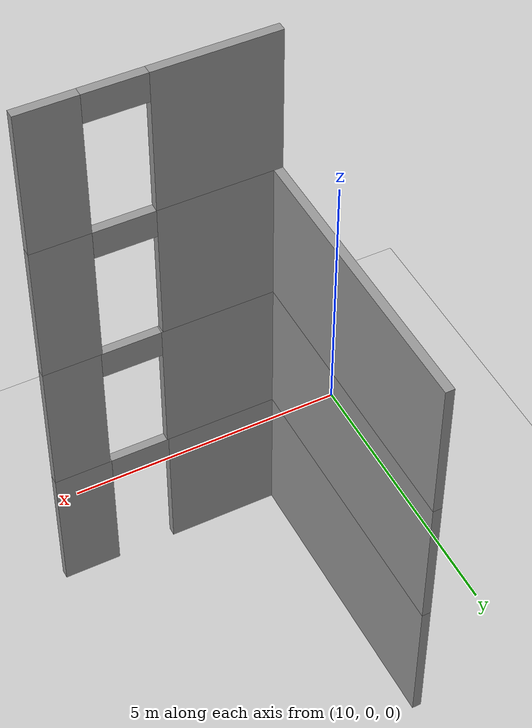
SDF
<sdf version="1.6">
 <world name="default">
  <model name="ground_plane">
   <static>1</static>
   <link name="link">
    <collision name="collision">
     <geometry><plane><normal>0 0 1</normal><size>100 100</size></plane></geometry>
     <surface>
      <contact><collide_bitmask>65535</collide_bitmask></contact>
      <friction><ode><mu>100</mu><mu2>50</mu2></ode></friction>
     </surface>
    </collision>
    <visual name="visual">
     <cast_shadows>0</cast_shadows>
     <geometry><plane><normal>0 0 1</normal><size>100 100</size></plane></geometry>
     <material>
      <script><uri>file://media/materials/scripts/gazebo.material</uri><name>Gazebo/Grey</name></script>
     </material>
    </visual>
   </link>
  </model>
  <model name="floor2plan_v2">
   <link name="Wall_106">
    <pose>13.9531 1.47672 5 0 -0 0</pose>
    <visual name="Wall_106_Visual_0">
     <pose>-0.9875 0 1.25 0 -0 0</pose>
     <geometry><box><size>2.025 0.15 2.5</size></box></geometry>
     <material>
      <script><uri>file://media/materials/scripts/gazebo.material</uri><name>Gazebo/Grey</name></script>
      <ambient>1 1 1 1</ambient>
      <shader type="pixel"/>
      <diffuse>0.7 0.7 0.7 1</diffuse>
      <specular>0.01 0.01 0.01 1</specular>
      <emissive>0 0 0 1</emissive>
     </material>
     <meta><layer>2</layer></meta>
    </visual>
    <visual name="Wall_106_Visual_1">
     <pose>1.5125 0 1.25 0 -0 0</pose>
     <geometry><box><size>0.974999 0.15 2.5</size></box></geometry>
     <material>
      <script><uri>file://media/materials/scripts/gazebo.material</uri><name>Gazebo/Grey</name></script>
      <ambient>1 1 1 1</ambient>
      <shader type="pixel"/>
      <diffuse>0.7 0.7 0.7 1</diffuse>
      <specular>0.01 0.01 0.01 1</specular>
      <emissive>0 0 0 1</emissive>
     </material>
     <meta><layer>2</layer></meta>
    </visual>
    <visual name="Wall_106_Visual_2">
     <pose>0.525001 0 2.25 0 -0 0</pose>
     <geometry><box><size>1 0.15 0.5</size></box></geometry>
     <material>
      <script><uri>file://media/materials/scripts/gazebo.material</uri><name>Gazebo/Grey</name></script>
      <ambient>1 1 1 1</ambient>
      <shader type="pixel"/>
      <diffuse>0.7 0.7 0.7 1</diffuse>
      <specular>0.01 0.01 0.01 1</specular>
      <emissive>0 0 0 1</emissive>
     </material>
     <meta><layer>2</layer></meta>
    </visual>
    <collision name="Wall_106_Collision_0">
     <pose>-0.9875 0 1.25 0 -0 0</pose>
     <geometry><box><size>2.025 0.15 2.5</size></box></geometry>
     <surface>
      <friction>
       <ode><mu>1</mu><mu2>1</mu2><fdir1>0 0 0</fdir1><slip1>0</slip1><slip2>0</slip2></ode>
       <torsional>
        <coefficient>1</coefficient>
        <patch_radius>0</patch_radius>
        <surface_radius>0</surface_radius>
        <use_patch_radius>1</use_patch_radius>
        <ode><slip>0</slip></ode>
       </torsional>
      </friction>
      <bounce><restitution_coefficient>0</restitution_coefficient><threshold>1e+06</threshold></bounce>
      <contact>
       <collide_without_contact>0</collide_without_contact>
       <collide_without_contact_bitmask>1</collide_without_contact_bitmask>
       <collide_bitmask>1</collide_bitmask>
       <ode>
        <soft_cfm>0</soft_cfm>
        <soft_erp>0.2</soft_erp>
        <kp>1e+13</kp>
        <kd>1</kd>
        <max_vel>0.01</max_vel>
        <min_depth>0</min_depth>
       </ode>
       <bullet>
        <split_impulse>1</split_impulse>
        <split_impulse_penetration_threshold>-0.01</split_impulse_penetration_threshold>
        <soft_cfm>0</soft_cfm>
        <soft_erp>0.2</soft_erp>
        <kp>1e+13</kp>
        <kd>1</kd>
       </bullet>
      </contact>
     </surface>
    </collision>
    <collision name="Wall_106_Collision_2">
     <pose>0.525001 0 2.25 0 -0 0</pose>
     <geometry><box><size>1 0.15 0.5</size></box></geometry>
     <surface>
      <friction>
       <ode><mu>1</mu><mu2>1</mu2><fdir1>0 0 0</fdir1><slip1>0</slip1><slip2>0</slip2></ode>
       <torsional>
        <coefficient>1</coefficient>
        <patch_radius>0</patch_radius>
        <surface_radius>0</surface_radius>
        <use_patch_radius>1</use_patch_radius>
        <ode><slip>0</slip></ode>
       </torsional>
      </friction>
      <bounce><restitution_coefficient>0</restitution_coefficient><threshold>1e+06</threshold></bounce>
      <contact>
       <collide_without_contact>0</collide_without_contact>
       <collide_without_contact_bitmask>1</collide_without_contact_bitmask>
       <collide_bitmask>1</collide_bitmask>
       <ode>
        <soft_cfm>0</soft_cfm>
        <soft_erp>0.2</soft_erp>
        <kp>1e+13</kp>
        <kd>1</kd>
        <max_vel>0.01</max_vel>
        <min_depth>0</min_depth>
       </ode>
       <bullet>
        <split_impulse>1</split_impulse>
        <split_impulse_penetration_threshold>-0.01</split_impulse_penetration_threshold>
        <soft_cfm>0</soft_cfm>
        <soft_erp>0.2</soft_erp>
        <kp>1e+13</kp>
        <kd>1</kd>
       </bullet>
      </contact>
     </surface>
    </collision>
    <collision name="Wall_106_Collision_1">
     <pose>1.5125 0 1.25 0 -0 0</pose>
     <geometry><box><size>0.974999 0.15 2.5</size></box></geometry>
     <surface>
      <friction>
       <ode><mu>1</mu><mu2>1</mu2><fdir1>0 0 0</fdir1><slip1>0</slip1><slip2>0</slip2></ode>
       <torsional>
        <coefficient>1</coefficient>
        <patch_radius>0</patch_radius>
        <surface_radius>0</surface_radius>
        <use_patch_radius>1</use_patch_radius>
        <ode><slip>0</slip></ode>
       </torsional>
      </friction>
      <bounce><restitution_coefficient>0</restitution_coefficient><threshold>1e+06</threshold></bounce>
      <contact>
       <collide_without_contact>0</collide_without_contact>
       <collide_without_contact_bitmask>1</collide_without_contact_bitmask>
       <collide_bitmask>1</collide_bitmask>
       <ode>
        <soft_cfm>0</soft_cfm>
        <soft_erp>0.2</soft_erp>
        <kp>1e+13</kp>
        <kd>1</kd>
        <max_vel>0.01</max_vel>
        <min_depth>0</min_depth>
       </ode>
       <bullet>
        <split_impulse>1</split_impulse>
        <split_impulse_penetration_threshold>-0.01</split_impulse_penetration_threshold>
        <soft_cfm>0</soft_cfm>
        <soft_erp>0.2</soft_erp>
        <kp>1e+13</kp>
        <kd>1</kd>
       </bullet>
      </contact>
     </surface>
    </collision>
   </link>
   <link name="Wall_111">
    <pose>12.0281 3.90172 5 0 0 -1.5708</pose>
    <visual name="Wall_111_Visual">
     <pose>0 0 1.25 0 -0 0</pose>
     <geometry><box><size>5 0.15 2.5</size></box></geometry>
     <material>
      <script><uri>file://media/materials/scripts/gazebo.material</uri><name>Gazebo/Grey</name></script>
      <ambient>1 1 1 1</ambient>
      <shader type="pixel"/>
      <diffuse>0.7 0.7 0.7 1</diffuse>
      <specular>0.01 0.01 0.01 1</specular>
      <emissive>0 0 0 1</emissive>
     </material>
     <meta><layer>2</layer></meta>
    </visual>
    <collision name="Wall_111_Collision">
     <pose>0 0 1.25 0 -0 0</pose>
     <geometry><box><size>5 0.15 2.5</size></box></geometry>
     <surface>
      <friction>
       <ode><mu>1</mu><mu2>1</mu2><fdir1>0 0 0</fdir1><slip1>0</slip1><slip2>0</slip2></ode>
       <torsional>
        <coefficient>1</coefficient>
        <patch_radius>0</patch_radius>
        <surface_radius>0</surface_radius>
        <use_patch_radius>1</use_patch_radius>
        <ode><slip>0</slip></ode>
       </torsional>
      </friction>
      <bounce><restitution_coefficient>0</restitution_coefficient><threshold>1e+06</threshold></bounce>
      <contact>
       <collide_without_contact>0</collide_without_contact>
       <collide_without_contact_bitmask>1</collide_without_contact_bitmask>
       <collide_bitmask>1</collide_bitmask>
       <ode>
        <soft_cfm>0</soft_cfm>
        <soft_erp>0.2</soft_erp>
        <kp>1e+13</kp>
        <kd>1</kd>
        <max_vel>0.01</max_vel>
        <min_depth>0</min_depth>
       </ode>
       <bullet>
        <split_impulse>1</split_impulse>
        <split_impulse_penetration_threshold>-0.01</split_impulse_penetration_threshold>
        <soft_cfm>0</soft_cfm>
        <soft_erp>0.2</soft_erp>
        <kp>1e+13</kp>
        <kd>1</kd>
       </bullet>
      </contact>
     </surface>
    </collision>
   </link>
   <link name="Wall_132">
    <pose>13.9531 1.47672 7.5 0 -0 0</pose>
    <visual name="Wall_132_Visual_0">
     <pose>-0.9875 0 1.25 0 -0 0</pose>
     <geometry><box><size>2.025 0.15 2.5</size></box></geometry>
     <material>
      <script><uri>file://media/materials/scripts/gazebo.material</uri><name>Gazebo/Grey</name></script>
      <ambient>1 1 1 1</ambient>
      <shader type="pixel"/>
      <diffuse>0.7 0.7 0.7 1</diffuse>
      <specular>0.01 0.01 0.01 1</specular>
      <emissive>0 0 0 1</emissive>
     </material>
     <meta><layer>3</layer></meta>
    </visual>
    <visual name="Wall_132_Visual_1">
     <pose>1.5125 0 1.25 0 -0 0</pose>
     <geometry><box><size>0.974999 0.15 2.5</size></box></geometry>
     <material>
      <script><uri>file://media/materials/scripts/gazebo.material</uri><name>Gazebo/Grey</name></script>
      <ambient>1 1 1 1</ambient>
      <shader type="pixel"/>
      <diffuse>0.7 0.7 0.7 1</diffuse>
      <specular>0.01 0.01 0.01 1</specular>
      <emissive>0 0 0 1</emissive>
     </material>
     <meta><layer>3</layer></meta>
    </visual>
    <visual name="Wall_132_Visual_2">
     <pose>0.525001 0 2.25 0 -0 0</pose>
     <geometry><box><size>1 0.15 0.5</size></box></geometry>
     <material>
      <script><uri>file://media/materials/scripts/gazebo.material</uri><name>Gazebo/Grey</name></script>
      <ambient>1 1 1 1</ambient>
      <shader type="pixel"/>
      <diffuse>0.7 0.7 0.7 1</diffuse>
      <specular>0.01 0.01 0.01 1</specular>
      <emissive>0 0 0 1</emissive>
     </material>
     <meta><layer>3</layer></meta>
    </visual>
    <collision name="Wall_132_Collision_0">
     <pose>-0.9875 0 1.25 0 -0 0</pose>
     <geometry><box><size>2.025 0.15 2.5</size></box></geometry>
     <surface>
      <friction>
       <ode><mu>1</mu><mu2>1</mu2><fdir1>0 0 0</fdir1><slip1>0</slip1><slip2>0</slip2></ode>
       <torsional>
        <coefficient>1</coefficient>
        <patch_radius>0</patch_radius>
        <surface_radius>0</surface_radius>
        <use_patch_radius>1</use_patch_radius>
        <ode><slip>0</slip></ode>
       </torsional>
      </friction>
      <bounce><restitution_coefficient>0</restitution_coefficient><threshold>1e+06</threshold></bounce>
      <contact>
       <collide_without_contact>0</collide_without_contact>
       <collide_without_contact_bitmask>1</collide_without_contact_bitmask>
       <collide_bitmask>1</collide_bitmask>
       <ode>
        <soft_cfm>0</soft_cfm>
        <soft_erp>0.2</soft_erp>
        <kp>1e+13</kp>
        <kd>1</kd>
        <max_vel>0.01</max_vel>
        <min_depth>0</min_depth>
       </ode>
       <bullet>
        <split_impulse>1</split_impulse>
        <split_impulse_penetration_threshold>-0.01</split_impulse_penetration_threshold>
        <soft_cfm>0</soft_cfm>
        <soft_erp>0.2</soft_erp>
        <kp>1e+13</kp>
        <kd>1</kd>
       </bullet>
      </contact>
     </surface>
    </collision>
    <collision name="Wall_132_Collision_1">
     <pose>1.5125 0 1.25 0 -0 0</pose>
     <geometry><box><size>0.974999 0.15 2.5</size></box></geometry>
     <surface>
      <friction>
       <ode><mu>1</mu><mu2>1</mu2><fdir1>0 0 0</fdir1><slip1>0</slip1><slip2>0</slip2></ode>
       <torsional>
        <coefficient>1</coefficient>
        <patch_radius>0</patch_radius>
        <surface_radius>0</surface_radius>
        <use_patch_radius>1</use_patch_radius>
        <ode><slip>0</slip></ode>
       </torsional>
      </friction>
      <bounce><restitution_coefficient>0</restitution_coefficient><threshold>1e+06</threshold></bounce>
      <contact>
       <collide_without_contact>0</collide_without_contact>
       <collide_without_contact_bitmask>1</collide_without_contact_bitmask>
       <collide_bitmask>1</collide_bitmask>
       <ode>
        <soft_cfm>0</soft_cfm>
        <soft_erp>0.2</soft_erp>
        <kp>1e+13</kp>
        <kd>1</kd>
        <max_vel>0.01</max_vel>
        <min_depth>0</min_depth>
       </ode>
       <bullet>
        <split_impulse>1</split_impulse>
        <split_impulse_penetration_threshold>-0.01</split_impulse_penetration_threshold>
        <soft_cfm>0</soft_cfm>
        <soft_erp>0.2</soft_erp>
        <kp>1e+13</kp>
        <kd>1</kd>
       </bullet>
      </contact>
     </surface>
    </collision>
    <collision name="Wall_132_Collision_2">
     <pose>0.525001 0 2.25 0 -0 0</pose>
     <geometry><box><size>1 0.15 0.5</size></box></geometry>
     <surface>
      <friction>
       <ode><mu>1</mu><mu2>1</mu2><fdir1>0 0 0</fdir1><slip1>0</slip1><slip2>0</slip2></ode>
       <torsional>
        <coefficient>1</coefficient>
        <patch_radius>0</patch_radius>
        <surface_radius>0</surface_radius>
        <use_patch_radius>1</use_patch_radius>
        <ode><slip>0</slip></ode>
       </torsional>
      </friction>
      <bounce><restitution_coefficient>0</restitution_coefficient><threshold>1e+06</threshold></bounce>
      <contact>
       <collide_without_contact>0</collide_without_contact>
       <collide_without_contact_bitmask>1</collide_without_contact_bitmask>
       <collide_bitmask>1</collide_bitmask>
       <ode>
        <soft_cfm>0</soft_cfm>
        <soft_erp>0.2</soft_erp>
        <kp>1e+13</kp>
        <kd>1</kd>
        <max_vel>0.01</max_vel>
        <min_depth>0</min_depth>
       </ode>
       <bullet>
        <split_impulse>1</split_impulse>
        <split_impulse_penetration_threshold>-0.01</split_impulse_penetration_threshold>
        <soft_cfm>0</soft_cfm>
        <soft_erp>0.2</soft_erp>
        <kp>1e+13</kp>
        <kd>1</kd>
       </bullet>
      </contact>
     </surface>
    </collision>
   </link>
   <link name="Wall_31">
    <pose>13.9531 1.47672 0 0 -0 0</pose>
    <visual name="Wall_31_Visual_0">
     <pose>-0.9875 0 1.25 0 -0 0</pose>
     <geometry><box><size>2.025 0.15 2.5</size></box></geometry>
     <material>
      <script><uri>file://media/materials/scripts/gazebo.material</uri><name>Gazebo/Grey</name></script>
      <ambient>1 1 1 1</ambient>
      <shader type="pixel"/>
      <diffuse>0.7 0.7 0.7 1</diffuse>
      <specular>0.01 0.01 0.01 1</specular>
      <emissive>0 0 0 1</emissive>
     </material>
     <meta><layer>0</layer></meta>
    </visual>
    <visual name="Wall_31_Visual_1">
     <pose>1.5125 0 1.25 0 -0 0</pose>
     <geometry><box><size>0.974999 0.15 2.5</size></box></geometry>
     <material>
      <script><uri>file://media/materials/scripts/gazebo.material</uri><name>Gazebo/Grey</name></script>
      <ambient>1 1 1 1</ambient>
      <shader type="pixel"/>
      <diffuse>0.7 0.7 0.7 1</diffuse>
      <specular>0.01 0.01 0.01 1</specular>
      <emissive>0 0 0 1</emissive>
     </material>
     <meta><layer>0</layer></meta>
    </visual>
    <visual name="Wall_31_Visual_2">
     <pose>0.525001 0 2.25 0 -0 0</pose>
     <geometry><box><size>1 0.15 0.5</size></box></geometry>
     <material>
      <script><uri>file://media/materials/scripts/gazebo.material</uri><name>Gazebo/Grey</name></script>
      <ambient>1 1 1 1</ambient>
      <shader type="pixel"/>
      <diffuse>0.7 0.7 0.7 1</diffuse>
      <specular>0.01 0.01 0.01 1</specular>
      <emissive>0 0 0 1</emissive>
     </material>
     <meta><layer>0</layer></meta>
    </visual>
    <collision name="Wall_31_Collision_0">
     <pose>-0.9875 0 1.25 0 -0 0</pose>
     <geometry><box><size>2.025 0.15 2.5</size></box></geometry>
     <surface>
      <friction>
       <ode><mu>1</mu><mu2>1</mu2><fdir1>0 0 0</fdir1><slip1>0</slip1><slip2>0</slip2></ode>
       <torsional>
        <coefficient>1</coefficient>
        <patch_radius>0</patch_radius>
        <surface_radius>0</surface_radius>
        <use_patch_radius>1</use_patch_radius>
        <ode><slip>0</slip></ode>
       </torsional>
      </friction>
      <bounce><restitution_coefficient>0</restitution_coefficient><threshold>1e+06</threshold></bounce>
      <contact>
       <collide_without_contact>0</collide_without_contact>
       <collide_without_contact_bitmask>1</collide_without_contact_bitmask>
       <collide_bitmask>1</collide_bitmask>
       <ode>
        <soft_cfm>0</soft_cfm>
        <soft_erp>0.2</soft_erp>
        <kp>1e+13</kp>
        <kd>1</kd>
        <max_vel>0.01</max_vel>
        <min_depth>0</min_depth>
       </ode>
       <bullet>
        <split_impulse>1</split_impulse>
        <split_impulse_penetration_threshold>-0.01</split_impulse_penetration_threshold>
        <soft_cfm>0</soft_cfm>
        <soft_erp>0.2</soft_erp>
        <kp>1e+13</kp>
        <kd>1</kd>
       </bullet>
      </contact>
     </surface>
    </collision>
    <collision name="Wall_31_Collision_2">
     <pose>0.525001 0 2.25 0 -0 0</pose>
     <geometry><box><size>1 0.15 0.5</size></box></geometry>
     <surface>
      <friction>
       <ode><mu>1</mu><mu2>1</mu2><fdir1>0 0 0</fdir1><slip1>0</slip1><slip2>0</slip2></ode>
       <torsional>
        <coefficient>1</coefficient>
        <patch_radius>0</patch_radius>
        <surface_radius>0</surface_radius>
        <use_patch_radius>1</use_patch_radius>
        <ode><slip>0</slip></ode>
       </torsional>
      </friction>
      <bounce><restitution_coefficient>0</restitution_coefficient><threshold>1e+06</threshold></bounce>
      <contact>
       <collide_without_contact>0</collide_without_contact>
       <collide_without_contact_bitmask>1</collide_without_contact_bitmask>
       <collide_bitmask>1</collide_bitmask>
       <ode>
        <soft_cfm>0</soft_cfm>
        <soft_erp>0.2</soft_erp>
        <kp>1e+13</kp>
        <kd>1</kd>
        <max_vel>0.01</max_vel>
        <min_depth>0</min_depth>
       </ode>
       <bullet>
        <split_impulse>1</split_impulse>
        <split_impulse_penetration_threshold>-0.01</split_impulse_penetration_threshold>
        <soft_cfm>0</soft_cfm>
        <soft_erp>0.2</soft_erp>
        <kp>1e+13</kp>
        <kd>1</kd>
       </bullet>
      </contact>
     </surface>
    </collision>
    <collision name="Wall_31_Collision_1">
     <pose>1.5125 0 1.25 0 -0 0</pose>
     <geometry><box><size>0.974999 0.15 2.5</size></box></geometry>
     <surface>
      <friction>
       <ode><mu>1</mu><mu2>1</mu2><fdir1>0 0 0</fdir1><slip1>0</slip1><slip2>0</slip2></ode>
       <torsional>
        <coefficient>1</coefficient>
        <patch_radius>0</patch_radius>
        <surface_radius>0</surface_radius>
        <use_patch_radius>1</use_patch_radius>
        <ode><slip>0</slip></ode>
       </torsional>
      </friction>
      <bounce><restitution_coefficient>0</restitution_coefficient><threshold>1e+06</threshold></bounce>
      <contact>
       <collide_without_contact>0</collide_without_contact>
       <collide_without_contact_bitmask>1</collide_without_contact_bitmask>
       <collide_bitmask>1</collide_bitmask>
       <ode>
        <soft_cfm>0</soft_cfm>
        <soft_erp>0.2</soft_erp>
        <kp>1e+13</kp>
        <kd>1</kd>
        <max_vel>0.01</max_vel>
        <min_depth>0</min_depth>
       </ode>
       <bullet>
        <split_impulse>1</split_impulse>
        <split_impulse_penetration_threshold>-0.01</split_impulse_penetration_threshold>
        <soft_cfm>0</soft_cfm>
        <soft_erp>0.2</soft_erp>
        <kp>1e+13</kp>
        <kd>1</kd>
       </bullet>
      </contact>
     </surface>
    </collision>
   </link>
   <link name="Wall_42">
    <pose>12.0281 3.90172 0 0 0 -1.5708</pose>
    <visual name="Wall_42_Visual">
     <pose>0 0 1.25 0 -0 0</pose>
     <geometry><box><size>5 0.15 2.5</size></box></geometry>
     <material>
      <script><uri>file://media/materials/scripts/gazebo.material</uri><name>Gazebo/Grey</name></script>
      <ambient>1 1 1 1</ambient>
      <shader type="pixel"/>
      <diffuse>0.7 0.7 0.7 1</diffuse>
      <specular>0.01 0.01 0.01 1</specular>
      <emissive>0 0 0 1</emissive>
     </material>
     <meta><layer>0</layer></meta>
    </visual>
    <collision name="Wall_42_Collision">
     <pose>0 0 1.25 0 -0 0</pose>
     <geometry><box><size>5 0.15 2.5</size></box></geometry>
     <surface>
      <friction>
       <ode><mu>1</mu><mu2>1</mu2><fdir1>0 0 0</fdir1><slip1>0</slip1><slip2>0</slip2></ode>
       <torsional>
        <coefficient>1</coefficient>
        <patch_radius>0</patch_radius>
        <surface_radius>0</surface_radius>
        <use_patch_radius>1</use_patch_radius>
        <ode><slip>0</slip></ode>
       </torsional>
      </friction>
      <bounce><restitution_coefficient>0</restitution_coefficient><threshold>1e+06</threshold></bounce>
      <contact>
       <collide_without_contact>0</collide_without_contact>
       <collide_without_contact_bitmask>1</collide_without_contact_bitmask>
       <collide_bitmask>1</collide_bitmask>
       <ode>
        <soft_cfm>0</soft_cfm>
        <soft_erp>0.2</soft_erp>
        <kp>1e+13</kp>
        <kd>1</kd>
        <max_vel>0.01</max_vel>
        <min_depth>0</min_depth>
       </ode>
       <bullet>
        <split_impulse>1</split_impulse>
        <split_impulse_penetration_threshold>-0.01</split_impulse_penetration_threshold>
        <soft_cfm>0</soft_cfm>
        <soft_erp>0.2</soft_erp>
        <kp>1e+13</kp>
        <kd>1</kd>
       </bullet>
      </contact>
     </surface>
    </collision>
   </link>
   <link name="Wall_80">
    <pose>13.9531 1.47672 2.5 0 -0 0</pose>
    <visual name="Wall_80_Visual_0">
     <pose>-0.976 0 1.25 0 -0 0</pose>
     <geometry><box><size>2.048 0.15 2.5</size></box></geometry>
     <material>
      <script><uri>file://media/materials/scripts/gazebo.material</uri><name>Gazebo/Grey</name></script>
      <ambient>1 1 1 1</ambient>
      <shader type="pixel"/>
      <diffuse>0.7 0.7 0.7 1</diffuse>
      <specular>0.01 0.01 0.01 1</specular>
      <emissive>0 0 0 1</emissive>
     </material>
     <meta><layer>1</layer></meta>
    </visual>
    <visual name="Wall_80_Visual_1">
     <pose>1.524 0 1.25 0 -0 0</pose>
     <geometry><box><size>0.952 0.15 2.5</size></box></geometry>
     <material>
      <script><uri>file://media/materials/scripts/gazebo.material</uri><name>Gazebo/Grey</name></script>
      <ambient>1 1 1 1</ambient>
      <shader type="pixel"/>
      <diffuse>0.7 0.7 0.7 1</diffuse>
      <specular>0.01 0.01 0.01 1</specular>
      <emissive>0 0 0 1</emissive>
     </material>
     <meta><layer>1</layer></meta>
    </visual>
    <visual name="Wall_80_Visual_2">
     <pose>0.548 0 2.25 0 -0 0</pose>
     <geometry><box><size>1 0.15 0.5</size></box></geometry>
     <material>
      <script><uri>file://media/materials/scripts/gazebo.material</uri><name>Gazebo/Grey</name></script>
      <ambient>1 1 1 1</ambient>
      <shader type="pixel"/>
      <diffuse>0.7 0.7 0.7 1</diffuse>
      <specular>0.01 0.01 0.01 1</specular>
      <emissive>0 0 0 1</emissive>
     </material>
     <meta><layer>1</layer></meta>
    </visual>
    <collision name="Wall_80_Collision_0">
     <pose>-0.976 0 1.25 0 -0 0</pose>
     <geometry><box><size>2.048 0.15 2.5</size></box></geometry>
     <surface>
      <friction>
       <ode><mu>1</mu><mu2>1</mu2><fdir1>0 0 0</fdir1><slip1>0</slip1><slip2>0</slip2></ode>
       <torsional>
        <coefficient>1</coefficient>
        <patch_radius>0</patch_radius>
        <surface_radius>0</surface_radius>
        <use_patch_radius>1</use_patch_radius>
        <ode><slip>0</slip></ode>
       </torsional>
      </friction>
      <bounce><restitution_coefficient>0</restitution_coefficient><threshold>1e+06</threshold></bounce>
      <contact>
       <collide_without_contact>0</collide_without_contact>
       <collide_without_contact_bitmask>1</collide_without_contact_bitmask>
       <collide_bitmask>1</collide_bitmask>
       <ode>
        <soft_cfm>0</soft_cfm>
        <soft_erp>0.2</soft_erp>
        <kp>1e+13</kp>
        <kd>1</kd>
        <max_vel>0.01</max_vel>
        <min_depth>0</min_depth>
       </ode>
       <bullet>
        <split_impulse>1</split_impulse>
        <split_impulse_penetration_threshold>-0.01</split_impulse_penetration_threshold>
        <soft_cfm>0</soft_cfm>
        <soft_erp>0.2</soft_erp>
        <kp>1e+13</kp>
        <kd>1</kd>
       </bullet>
      </contact>
     </surface>
    </collision>
    <collision name="Wall_80_Collision_1">
     <pose>1.524 0 1.25 0 -0 0</pose>
     <geometry><box><size>0.952 0.15 2.5</size></box></geometry>
     <surface>
      <friction>
       <ode><mu>1</mu><mu2>1</mu2><fdir1>0 0 0</fdir1><slip1>0</slip1><slip2>0</slip2></ode>
       <torsional>
        <coefficient>1</coefficient>
        <patch_radius>0</patch_radius>
        <surface_radius>0</surface_radius>
        <use_patch_radius>1</use_patch_radius>
        <ode><slip>0</slip></ode>
       </torsional>
      </friction>
      <bounce><restitution_coefficient>0</restitution_coefficient><threshold>1e+06</threshold></bounce>
      <contact>
       <collide_without_contact>0</collide_without_contact>
       <collide_without_contact_bitmask>1</collide_without_contact_bitmask>
       <collide_bitmask>1</collide_bitmask>
       <ode>
        <soft_cfm>0</soft_cfm>
        <soft_erp>0.2</soft_erp>
        <kp>1e+13</kp>
        <kd>1</kd>
        <max_vel>0.01</max_vel>
        <min_depth>0</min_depth>
       </ode>
       <bullet>
        <split_impulse>1</split_impulse>
        <split_impulse_penetration_threshold>-0.01</split_impulse_penetration_threshold>
        <soft_cfm>0</soft_cfm>
        <soft_erp>0.2</soft_erp>
        <kp>1e+13</kp>
        <kd>1</kd>
       </bullet>
      </contact>
     </surface>
    </collision>
    <collision name="Wall_80_Collision_2">
     <pose>0.548 0 2.25 0 -0 0</pose>
     <geometry><box><size>1 0.15 0.5</size></box></geometry>
     <surface>
      <friction>
       <ode><mu>1</mu><mu2>1</mu2><fdir1>0 0 0</fdir1><slip1>0</slip1><slip2>0</slip2></ode>
       <torsional>
        <coefficient>1</coefficient>
        <patch_radius>0</patch_radius>
        <surface_radius>0</surface_radius>
        <use_patch_radius>1</use_patch_radius>
        <ode><slip>0</slip></ode>
       </torsional>
      </friction>
      <bounce><restitution_coefficient>0</restitution_coefficient><threshold>1e+06</threshold></bounce>
      <contact>
       <collide_without_contact>0</collide_without_contact>
       <collide_without_contact_bitmask>1</collide_without_contact_bitmask>
       <collide_bitmask>1</collide_bitmask>
       <ode>
        <soft_cfm>0</soft_cfm>
        <soft_erp>0.2</soft_erp>
        <kp>1e+13</kp>
        <kd>1</kd>
        <max_vel>0.01</max_vel>
        <min_depth>0</min_depth>
       </ode>
       <bullet>
        <split_impulse>1</split_impulse>
        <split_impulse_penetration_threshold>-0.01</split_impulse_penetration_threshold>
        <soft_cfm>0</soft_cfm>
        <soft_erp>0.2</soft_erp>
        <kp>1e+13</kp>
        <kd>1</kd>
       </bullet>
      </contact>
     </surface>
    </collision>
   </link>
   <link name="Wall_85">
    <pose>12.0281 3.90172 2.5 0 0 -1.5708</pose>
    <visual name="Wall_85_Visual">
     <pose>0 0 1.25 0 -0 0</pose>
     <geometry><box><size>5 0.15 2.5</size></box></geometry>
     <material>
      <script><uri>file://media/materials/scripts/gazebo.material</uri><name>Gazebo/Grey</name></script>
      <ambient>1 1 1 1</ambient>
      <shader type="pixel"/>
      <diffuse>0.7 0.7 0.7 1</diffuse>
      <specular>0.01 0.01 0.01 1</specular>
      <emissive>0 0 0 1</emissive>
     </material>
     <meta><layer>1</layer></meta>
    </visual>
    <collision name="Wall_85_Collision">
     <pose>0 0 1.25 0 -0 0</pose>
     <geometry><box><size>5 0.15 2.5</size></box></geometry>
     <surface>
      <friction>
       <ode><mu>1</mu><mu2>1</mu2><fdir1>0 0 0</fdir1><slip1>0</slip1><slip2>0</slip2></ode>
       <torsional>
        <coefficient>1</coefficient>
        <patch_radius>0</patch_radius>
        <surface_radius>0</surface_radius>
        <use_patch_radius>1</use_patch_radius>
        <ode><slip>0</slip></ode>
       </torsional>
      </friction>
      <bounce><restitution_coefficient>0</restitution_coefficient><threshold>1e+06</threshold></bounce>
      <contact>
       <collide_without_contact>0</collide_without_contact>
       <collide_without_contact_bitmask>1</collide_without_contact_bitmask>
       <collide_bitmask>1</collide_bitmask>
       <ode>
        <soft_cfm>0</soft_cfm>
        <soft_erp>0.2</soft_erp>
        <kp>1e+13</kp>
        <kd>1</kd>
        <max_vel>0.01</max_vel>
        <min_depth>0</min_depth>
       </ode>
       <bullet>
        <split_impulse>1</split_impulse>
        <split_impulse_penetration_threshold>-0.01</split_impulse_penetration_threshold>
        <soft_cfm>0</soft_cfm>
        <soft_erp>0.2</soft_erp>
        <kp>1e+13</kp>
        <kd>1</kd>
       </bullet>
      </contact>
     </surface>
    </collision>
   </link>
   <static>1</static>
   <pose>-0.074109 0.009792 0 0 -0 0</pose>
  </model>
 </world>
</sdf>
